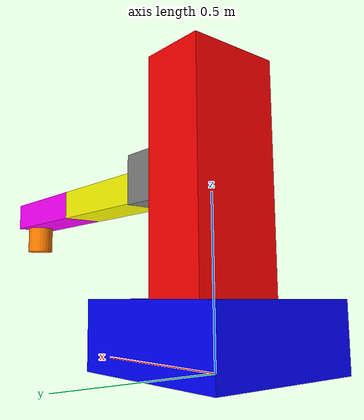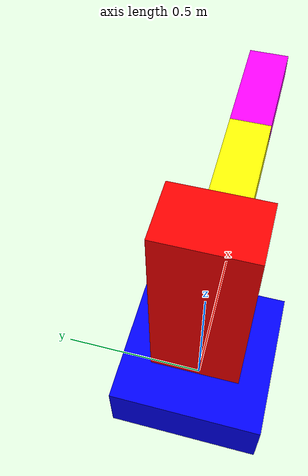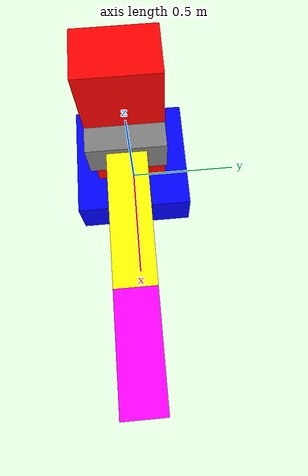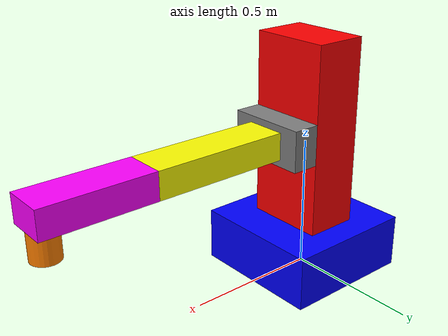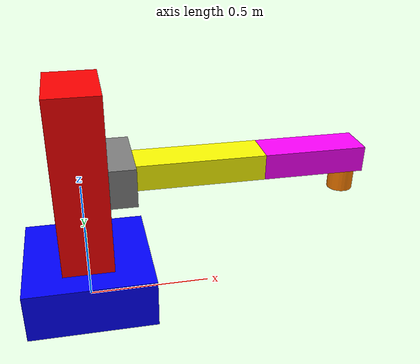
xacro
<?xml version="1.0"?>
<robot xmlns:xacro="http://www.ros.org/wiki/xacro" name="scara">
    <xacro:include filename="inertials.xacro" />
    <xacro:include filename="materials.xacro" />

    <xacro:include filename="scara_core.xacro" />
    <xacro:include filename="scara.ros2_control.xacro" />
    <xacro:include filename="gz_plugins.xacro" />
</robot>

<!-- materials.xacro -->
<robot xmlns:xacro="http://www.ros.org/wiki/xacro">

    <material name="red">
        <color rgba="1 0 0 1" />
    </material>

    <material name="green">
        <color rgba="0 1 0 1" />
    </material>

    <material name="blue">
        <color rgba="0 0 1 1" />
    </material>

    <material name="yellow">
        <color rgba="1 1 0 1" />
    </material>

    <material name="orange">
        <color rgba="1 0.5 0 1" />
    </material>

    <material name="purple">
        <color rgba="0.5 0 0.5 1" />
    </material>

    <material name="cyan">
        <color rgba="0 1 1 1" />
    </material>

    <material name="magenta">
        <color rgba="1 0 1 1" />
    </material>

    <material name="white">
        <color rgba="1 1 1 1" />
    </material>

    <material name="black">
        <color rgba="0 0 0 1" />
    </material>

    <material name="grey">
        <color rgba="0.5 0.5 0.5 1" />
    </material>

    <material name="light_grey">
        <color rgba="0.8 0.8 0.8 1" />
    </material>

    <material name="dark_grey">
        <color rgba="0.2 0.2 0.2 1" />
    </material>

    <material name="dark_green">
        <color rgba="0 0.4 0 1" />
    </material>

    <material name="dark_blue">
        <color rgba="0 0 0.5 1" />
    </material>

    <material name="dark_red">
        <color rgba="0.5 0 0 1" />
    </material>

    <material name="brown">
        <color rgba="0.4 0.2 0 1" />
    </material>

    <material name="pink">
        <color rgba="1 0.6 0.8 1" />
    </material>

    <material name="lime">
        <color rgba="0.7 1 0 1" />
    </material>

    <material name="teal">
        <color rgba="0 0.5 0.5 1" />
    </material>

    <material name="indigo">
        <color rgba="0.29 0 0.51 1" />
    </material>

    <material name="silver">
        <color rgba="0.75 0.75 0.75 1" />
    </material>

    <material name="gold">
        <color rgba="1 0.84 0 1" />
    </material>

</robot>

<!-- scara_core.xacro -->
<robot xmlns:xacro="http://www.ros.org/wiki/xacro">
    <!-- Properties -->
    <xacro:property name="base_lx" value="0.5" />
    <xacro:property name="base_ly" value="0.5" />
    <xacro:property name="base_lz" value="0.2" />
    <xacro:property name="base_mass" value="16" />

    <xacro:property name="column1_lx" value="0.2" />
    <xacro:property name="column1_ly" value="0.3" />
    <xacro:property name="column1_lz" value="0.7" />
    <xacro:property name="column1_mass" value="1" />

    <xacro:property name="carriage1_lx" value="0.1" />
    <xacro:property name="carriage1_ly" value="${column1_ly}" />
    <xacro:property name="carriage1_lz" value="0.15" />
    <xacro:property name="carriage1_mass" value="0.7" />

    <xacro:property name="shoulder_lx" value="0.55" />
    <xacro:property name="shoulder_ly" value="0.15" />
    <xacro:property name="shoulder_lz" value="0.1" />
    <xacro:property name="shoulder_mass" value="0.5" />

    <xacro:property name="elbow_lx" value="0.4" />
    <xacro:property name="elbow_ly" value="0.15" />
    <xacro:property name="elbow_lz" value="0.1" />
    <xacro:property name="elbow_mass" value="0.3" />

    <xacro:property name="ef_rad" value="0.05" />
    <xacro:property name="ef_len" value="0.1" />
    <xacro:property name="ef_mass" value="0.1" />

    <!-- Base -->
    <link name="base_footprint" />

    <link name="base_link">

        <visual>
            <geometry>
                <box size="${base_lx} ${base_ly} ${base_lz}" />
            </geometry>
            <origin xyz="0 0 0" rpy="0 0 0" />
            <material name="blue" />
        </visual>

        <collision>
            <geometry>
                <box size="${base_lx} ${base_ly} ${base_lz}" />
            </geometry>
            <origin xyz="0 0 0" rpy="0 0 0" />
        </collision>

        <xacro:box_inertial m="${base_mass}" lx="${base_lx}" ly="${base_ly}" lz="${base_lz}" o_xyz="0 0 0" o_rpy="0 0 0" />
    </link>

    <joint name="footprint_base_joint" type="fixed">
        <parent link="base_footprint" />
        <child link="base_link" />
        <origin xyz="0 0 ${base_lz / 2}" rpy="0.0 0.0 0.0" />
    </joint>

    <!-- Column 1 link -->
    <link name="column1_link">

        <visual>
            <geometry>
                <box size="${column1_lx} ${column1_ly} ${column1_lz}" />
            </geometry>
            <origin xyz="0 0 ${column1_lz / 2}" rpy="0 0 0" />
            <material name="red" />
        </visual>

        <collision>
            <geometry>
                <box size="${column1_lx} ${column1_ly} ${column1_lz}" />
            </geometry>
            <origin xyz="0 0 ${column1_lz / 2}" rpy="0 0 0" />
        </collision>

        <xacro:box_inertial m="${column1_mass}" lx="${column1_lx}" ly="${column1_ly}" lz="${column1_lz}" o_xyz="0 0 ${column1_lz / 2}" o_rpy="0 0 0" />

    </link>

    <joint name="base_column1_joint" type="fixed">
        <origin xyz="0 0 ${base_lz / 2}" rpy="0 0 0" />
        <parent link="base_link" />
        <child link="column1_link" />
    </joint>

    <link name="carriage1_link">

        <visual>
            <origin xyz="${carriage1_lx / 2} 0 0" rpy="0 0 0" />
            <geometry>
                <box size="${carriage1_lx} ${carriage1_ly} ${carriage1_lz}" />
            </geometry>
            <material name="grey" />
        </visual>

        <collision>
            <origin xyz="${carriage1_lx / 2} 0 0" rpy="0 0 0" />
            <geometry>
                <box size="${carriage1_lx} ${carriage1_ly} ${carriage1_lz}" />
            </geometry>
        </collision>

        <xacro:box_inertial m="${carriage1_mass}" lx="${carriage1_lx}" ly="${carriage1_ly}" lz="${carriage1_lz}" o_xyz="${carriage1_lx / 2} 0 0" o_rpy="0 0 0" />

    </link>

    <joint name="column1_carriage1_joint" type="prismatic">
        <origin xyz="${carriage1_lx} 0 0" rpy="0 0 0" />
        <parent link="column1_link" />
        <child link="carriage1_link" />
        <axis xyz="0 0 1" />
        <limit lower="${carriage1_lz / 2}" upper="${column1_lz - carriage1_lz / 2}" effort="100.0"
            velocity="0.1" />
    </joint>

    <!-- Shoulder -->
    <link name="shoulder_link">

        <visual>
            <origin xyz="${shoulder_lx / 2} 0 0" rpy="0 0 0" />
            <geometry>
                <box size="${shoulder_lx} ${shoulder_ly} ${shoulder_lz}" />
            </geometry>
            <material name="yellow" />
        </visual>

        <collision>
            <origin xyz="${shoulder_lx / 2} 0 0" rpy="0 0 0" />
            <geometry>
                <box size="${shoulder_lx} ${shoulder_ly} ${shoulder_lz}" />
            </geometry>
        </collision>

        <xacro:box_inertial m="${shoulder_mass}" lx="${shoulder_lx}" ly="${shoulder_ly}" lz="${shoulder_lz}" o_xyz="${shoulder_lx / 2} 0 0" o_rpy="0 0 0" />

    </link>

    <joint name="carriage1_shoulder_joint" type="revolute">
        <origin xyz="${carriage1_lx / 2} 0 0" rpy="0 0 0" />
        <parent link="carriage1_link" />
        <child link="shoulder_link" />
        <axis xyz="0 0 1" />
        <limit lower="${-pi * 0.9}" upper="${pi * 0.9}" effort="100" velocity="${pi}" />
    </joint>

    <!-- Elbow -->
    <link name="elbow_link">

        <visual>
            <geometry>
                <box size="${elbow_lx} ${elbow_ly} ${elbow_lz}" />
            </geometry>
            <origin xyz="${elbow_lx / 2} 0 0" rpy="0 0 0" />
            <material name="magenta" />
        </visual>

        <collision>
            <geometry>
                <box size="${elbow_lx} ${elbow_ly} ${elbow_lz}" />
            </geometry>
            <origin xyz="${elbow_lx / 2} 0 0" rpy="0 0 0" />
        </collision>

        <xacro:box_inertial m="${elbow_mass}" lx="${elbow_lx}" ly="${elbow_ly}" lz="${elbow_lz}" o_xyz="${elbow_lx / 2} 0 0" o_rpy="0 0 0" />

    </link>

    <joint name="shoulder_elbow_joint" type="revolute">
        <origin xyz="${shoulder_lx} 0 0" rpy="0 0 0" />
        <parent link="shoulder_link" />
        <child link="elbow_link" />
        <axis xyz="0 0 1" />
        <limit lower="${-pi * 0.9}" upper="${pi * 0.9}" effort="100" velocity="${pi}" />
    </joint>

    <!-- End Effector -->
    <link name="ef_link">

        <visual>
            <geometry>
                <cylinder radius="${ef_rad}" length="${ef_len}" />
            </geometry>
            <origin xyz="0 0 -${ef_len / 2}" rpy="0 0 0" />
            <material name="orange" />
        </visual>

        <collision>
            <geometry>
                <cylinder radius="${ef_rad}" length="${ef_len}" />
            </geometry>
            <origin xyz="0 0 -${ef_len / 2}" rpy="0 0 0" />
        </collision>

        <xacro:solid_cylinder_inertial m="${ef_mass}" r="${ef_rad}" l="${ef_len}" o_xyz="0 0 -${ef_len / 2}" o_rpy="0 0 0" />

    </link>

    <joint name="elbow_ef_joint" type="fixed">
        <origin xyz="${elbow_lx - ef_rad} 0 -${ef_len / 2}" rpy="0.0 0.0 0.0" />
        <parent link="elbow_link" />
        <child link="ef_link" />
    </joint>

</robot>
